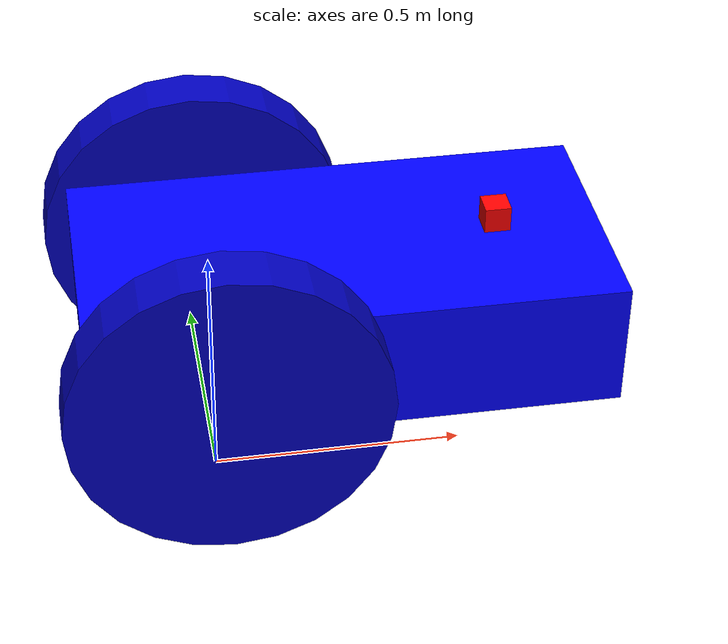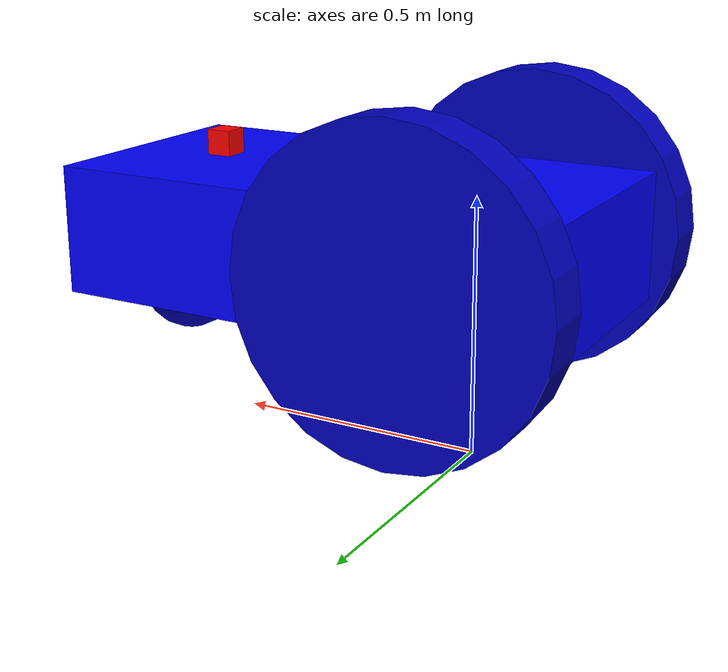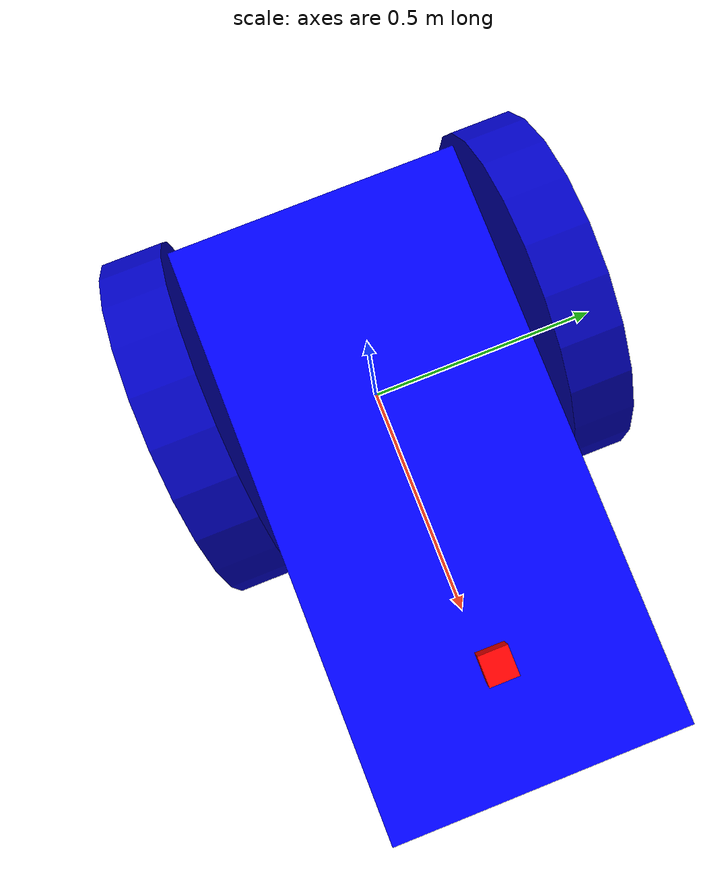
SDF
<?xml version="1.0" ?>
<sdf version="1.8">
    <model name='X1' canonical_link='chassis'>
        <pose>0 0 0 0 0 0</pose>

        <link name='chassis'>
            <pose relative_to='__model__'>0.25 0 0.4 0 0 0</pose>
            <inertial>
                <mass>1.14395</mass>
            </inertial>

            <visual name='visual'>
                <geometry>
                    <box>
                        <size>1.0 0.5 0.25</size>
                    </box>
                </geometry>
                <material>
                    <ambient>0.0 0.0 1.0 1</ambient>
                    <diffuse>0.0 0.0 1.0 1</diffuse>
                    <specular>0.0 0.0 1.0 1</specular>
                </material>
            </visual>

            <collision name='collision'>
                <geometry>
                    <box>
                        <size>1.0 0.5 0.25</size>
                    </box>
                </geometry>
            </collision>

            <visual name="camera_front_visual">
                <pose>0.43 0 0.1 0 0 0</pose>
                <geometry>
                    <box>
                        <size>0.02 0.02 0.02</size>
                    </box>
                </geometry>
            </visual>
        </link>

        <gazebo reference="chassis">
            <sensor name="imu_sensor" type="imu">
                <always_on>1</always_on>
                <update_rate>1</update_rate>
                <visualize>true</visualize>
                <topic>imu</topic>
            </sensor>

            <sensor name="camera_front" type="camera">
                <pose relative_to="chassis">0.43 0.1 0.05 0 0 0</pose>
                <always_on>1</always_on>
                <update_rate>20</update_rate>
                <camera name="camera_front">
                    <horizontal_fov>1.0472</horizontal_fov>
                    <lens>
                        <intrinsics>
                            <!-- fx = fy = width / ( 2 * tan (hfov / 2 ) ) -->
                            <fx>1108.5</fx>
                            <fy>1108.5</fy>
                            <!-- cx = ( width + 1 ) / 2 -->
                            <cx>640.5</cx>
                            <!-- cy = ( height + 1 ) / 2 -->
                            <cy>480.5</cy>
                            <s>0</s>
                        </intrinsics>
                    </lens>

                    <distortion>
                        <k1>0.0</k1>
                        <k2>0.0</k2>
                        <k3>0.0</k3>
                        <p1>0.0</p1>
                        <p2>0.0</p2>
                        <center>0.5 0.5</center>
                    </distortion>

                    <image>
                        <width>1280</width>
                        <height>960</height>
                        <format>R8G8B8</format>
                    </image>

                    <clip>
                        <near>0.01</near>
                        <far>300</far>
                    </clip>

                    <noise>
                        <type>gaussian</type>
                        <mean>0</mean>
                        <stddev>0.007</stddev>
                    </noise>
                </camera>
            </sensor>

            <plugin name="camera_controller" filename="libgazebo_ros_camera.so">
                <alwaysOn>true</alwaysOn>
                <updateRate>0.0</updateRate>
                <cameraName>camera_front</cameraName>
                <imageTopicName>image_raw</imageTopicName>
                <cameraInfoTopicName>camera_info</cameraInfoTopicName>
                <frameName>chassis</frameName>
                <hackBaseline>0.07</hackBaseline>
                <distortionK1>0.0</distortionK1>
                <distortionK2>0.0</distortionK2>
                <distortionK3>0.0</distortionK3>
                <distortionT1>0.0</distortionT1>
                <distortionT2>0.0</distortionT2>
            </plugin>

            <sensor name='gpu_lidar' type='gpu_lidar'>"
                <pose relative_to='chassis'>0.4 0 0.25 0 0 0</pose>
                <topic>lidar</topic>
                <update_rate>10</update_rate>
                <ray>
                    <scan>
                        <horizontal>
                        <samples>640</samples>
                        <resolution>1</resolution>
                        <min_angle>-1.396263</min_angle>
                        <max_angle>1.396263</max_angle>
                        </horizontal>
                        <vertical>
                        <samples>1</samples>
                        <resolution>0.01</resolution>
                        <min_angle>0</min_angle>
                        <max_angle>0</max_angle>
                        </vertical>
                    </scan>
                <range>
                    <min>0.08</min>
                    <max>50.0</max>
                    <resolution>0.01</resolution>
                </range>
                </ray>
                <always_on>1</always_on>
                <visualize>true</visualize>
            </sensor>
        </gazebo>

        <link name='left_wheel'>
            <pose relative_to="chassis">-0.25 0.3 0 -1.5707 0 0</pose>
            <inertial>
                <mass>2</mass>
                <inertia>
                    <ixx>0.145833</ixx>
                    <ixy>0</ixy>
                    <ixz>0</ixz>
                    <iyy>0.145833</iyy>
                    <iyz>0</iyz>
                    <izz>0.125</izz>
                </inertia>
            </inertial>
            <visual name='visual'>
                <geometry>
                    <cylinder>
                        <radius>0.3</radius>
                        <length>0.1</length>
                    </cylinder>
                </geometry>
                <material>
                    <ambient>0.0 0.0 0.75 1</ambient>
                    <diffuse>0.0 0.0 0.75 1</diffuse>
                    <specular>0.0 0.0 0.75 1</specular>
                </material>
            </visual>
            <collision name='collision'>
                <geometry>
                    <cylinder>
                        <radius>0.3</radius>
                        <length>0.1</length>
                    </cylinder>
                </geometry>
            </collision>
        </link>

        <link name='right_wheel'>
            <pose relative_to="chassis">-0.25 -0.3 0 -1.5707 0 0</pose>
            <inertial>
                <mass>1</mass>
                <inertia>
                    <ixx>0.145833</ixx>
                    <ixy>0</ixy>
                    <ixz>0</ixz>
                    <iyy>0.145833</iyy>
                    <iyz>0</iyz>
                    <izz>0.125</izz>
                </inertia>
            </inertial>
            <visual name='visual'>
                <geometry>
                    <cylinder>
                        <radius>0.3</radius>
                        <length>0.1</length>
                    </cylinder>
                </geometry>
                <material>
                    <ambient>0.0 0.0 0.75 1</ambient>
                    <diffuse>0.0 0.0 0.75 1</diffuse>
                    <specular>0.0 0.0 0.75 1</specular>
                </material>
            </visual>
            <collision name='collision'>
                <geometry>
                    <cylinder>
                        <radius>0.3</radius>
                        <length>0.1</length>
                    </cylinder>
                </geometry>
            </collision>
        </link>

        <link name='caster'>
            <pose relative_to="chassis">0.4 0 -0.15 0 0 0</pose>
            <inertial>
                <mass>1</mass>
                <inertia>
                    <ixx>0.1</ixx>
                    <ixy>0</ixy>
                    <ixz>0</ixz>
                    <iyy>0.1</iyy>
                    <iyz>0</iyz>
                    <izz>0.1</izz>
                </inertia>
            </inertial>

            <visual name='visual'>
                <geometry>
                    <sphere>
                        <radius>0.1</radius>
                    </sphere>
                </geometry>
                <material>
                    <ambient>0.0 0.0 0.75 1</ambient>
                    <diffuse>0.0 0.0 0.75 1</diffuse>
                    <specular>0.0 0.0 0.75 1</specular>
                </material>
            </visual>

            <collision name='collision'>
                <geometry>
                    <sphere>
                        <radius>0.1</radius>
                    </sphere>
                </geometry>
            </collision>
        </link>

        <joint name='left_wheel_joint' type='revolute'>
            <pose relative_to='left_wheel'/>
            <parent>chassis</parent>
            <child>left_wheel</child>
            <axis>
                <xyz expressed_in='__model__'>0 1 0</xyz>
                <limit>
                    <lower>-1e+6</lower>
                    <upper>1e+6</upper>
                    <effort>1e+6</effort>
                </limit>
            </axis>
        </joint>

        <joint name='right_wheel_joint' type='revolute'>
            <pose relative_to='right_wheel'/>
            <parent>chassis</parent>
            <child>right_wheel</child>
            <axis>
                <xyz expressed_in='__model__'>0 1 0</xyz>
                <limit>
                    <lower>-1e+6</lower>
                    <upper>1e+6</upper>
                    <effort>1e+6</effort>
                </limit>
            </axis>
        </joint>

        <joint name='caster_wheel' type='revolute'>
            <pose relative_to='caster'/>
            <parent>chassis</parent>
            <child>caster</child>
            <axis>
                <xyz expressed_in='__model__'>0 1 0</xyz>
                <limit>
                    <lower>-1e+6</lower>
                    <upper>1e+6</upper>
                    <effort>1e+6</effort>
                </limit>
            </axis>
        </joint>

        <link name="hokuyo_link">
            <pose relative_to="chassis">0.3 0 0.15 0 0 0</pose>
            <inertial>
                <mass>1e-5</mass>
                <inertia>
                    <ixx>1e-6</ixx>
                    <ixy>0</ixy>
                    <ixz>0</ixz>
                    <iyy>1e-6</iyy>
                    <iyz>0</iyz>
                    <izz>1e-6</izz>
                </inertia>
            </inertial>

            <visual name='visual'>
                <geometry>
                    <box>
                        <size>0.05 0.05 0.05</size>
                    </box>
                </geometry>
                <material>
                    <ambient>1 0 0 1</ambient>
                    <diffuse>1 0 0 1</diffuse>
                    <specular>1 0 0 1</specular>
                </material>
            </visual>

            <collision name='collision'>
                <geometry>
                    <box>
                        <size>0.1 0.1 0.1</size>
                    </box>
                </geometry>
            </collision>
        </link>

        <gazebo reference="hokuyo_link">
            <sensor type="gpu_ray" name="head_hokuyo_sensor">
                <pose>0 0 0 0 0 0</pose>
                <visualize>true</visualize>
                <update_rate>30</update_rate>
                <ray>
                    <scan>
                        <horizontal>
                            <samples>360</samples>
                            <resolution>1</resolution>
                            <min_angle>-3.14</min_angle>
                            <max_angle>3.14</max_angle>
                        </horizontal>
                    </scan>

                    <range>
                        <min>0.10</min>
                        <max>30.0</max>
                        <resolution>0.01</resolution>
                    </range>

                    <noise>
                        <type>gaussian</type>
                        <mean>0.0</mean>
                        <stddev>0.01</stddev>
                    </noise>
                </ray>

                <plugin name="gazebo_ros_head_hokuyo_controller" filename="libgazebo_ros_gpu_laser.so">
                    <topicName>scan</topicName>
                    <frameName>hokuyo_link</frameName>
                </plugin>
            </sensor>
        </gazebo>

        <joint name="hokuyo_joint" type="fixed">
            <pose relative_to='hokuyo_link'>0.15 0 0.1 0 0 0</pose>
            <parent>chassis</parent>
            <child>hokuyo_link</child>
            <axis>
                <xyz expressed_in='__model__'>0 1 0</xyz>
                <limit>
                    <lower>-1.79769e+308</lower>
                    <upper>1.79769e+308</upper>
                </limit>
            </axis>
        </joint>

        <plugin
            filename="ignition-gazebo-diff-drive-system"
            name="ignition::gazebo::systems::DiffDrive">
            <left_joint>left_wheel_joint</left_joint>
            <right_joint>right_wheel_joint</right_joint>
            <wheel_separation>0.6</wheel_separation>
            <wheel_radius>0.3</wheel_radius>
            <odom_publish_frequency>1</odom_publish_frequency>
            <max_linear_acceleration>1</max_linear_acceleration>
            <min_linear_acceleration>-1</min_linear_acceleration>
            <max_angular_acceleration>2</max_angular_acceleration>
            <min_angular_acceleration>-2</min_angular_acceleration>
            <max_linear_velocity>0.5</max_linear_velocity>
            <min_linear_velocity>-0.5</min_linear_velocity>
            <max_angular_velocity>1</max_angular_velocity>
            <min_angular_velocity>-1</min_angular_velocity>
      </plugin>
    </model>
</sdf>
